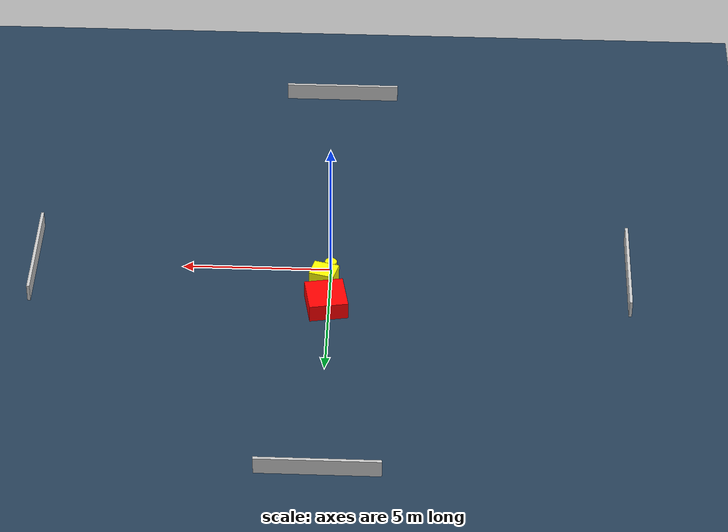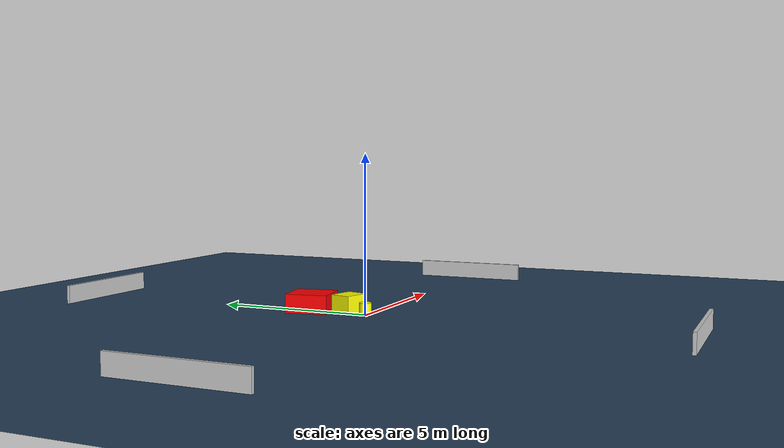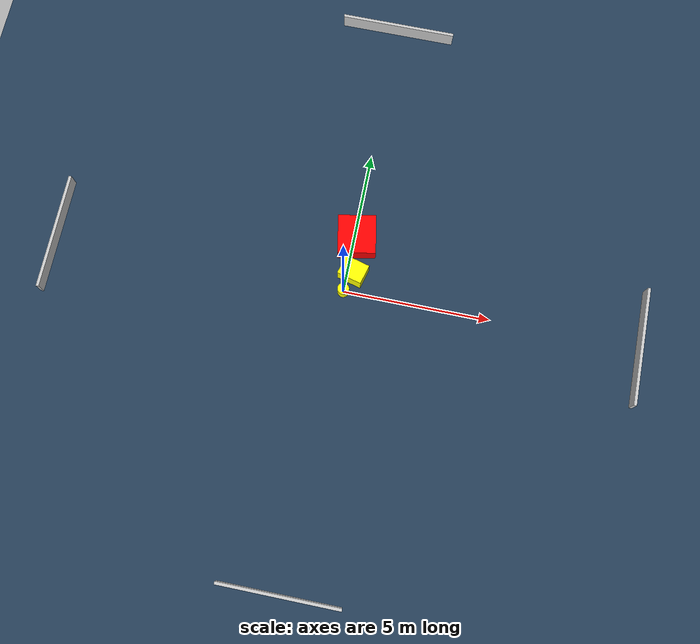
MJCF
<?xml version="1.0" ?>
<mujoco model="generated_environment">
  <option timestep="0.01" integrator="RK4" cone="elliptic"/>
  <default>
    <geom density="1"/>
  </default>
  <asset>
    <texture builtin="gradient" height="3072" name="skybox" rgb1="0.3 0.5 0.7" rgb2="0 0 0" type="skybox" width="512"/>
    <texture builtin="checker" height="300" name="groundplane" rgb1="0.2 0.3 0.4" rgb2="0.1 0.2 0.3" type="2d" width="300"/>
    <material name="groundplane" reflectance="0.2" texrepeat="5 5" texture="groundplane"/>
  </asset>
  <worldbody>
    <light dir="0 0 -1" directional="true" pos="0 0 1.5"/>
    <geom condim="3" friction="0.5 0.005 0.001" material="groundplane" name="floor" pos="0 0 0" size="0 0 0.05" type="plane"/>
    <body name="walls">
      <geom name="wall_1" condim="4" pos="-10.0 0.0 0.3" rgba="0.800000011920929 0.800000011920929 0.800000011920929 1.0" size="0.05 2.0 0.3" type="box"/>
      <geom name="wall_2" condim="4" pos="10.0 0.0 0.3" rgba="0.800000011920929 0.800000011920929 0.800000011920929 1.0" size="0.05 2.0 0.3" type="box"/>
      <geom name="wall_3" condim="4" pos="0.0 -10.0 0.3" rgba="0.800000011920929 0.800000011920929 0.800000011920929 1.0" size="2.0 0.05 0.3" type="box"/>
      <geom name="wall_4" condim="4" pos="0.0 10.0 0.3" rgba="0.800000011920929 0.800000011920929 0.800000011920929 1.0" size="2.0 0.05 0.3" type="box"/>
    </body>
    <body name="robot">
      <joint name="joint_x" type="slide" pos="0 0 0" axis="1 0 0"/>
      <joint name="joint_y" type="slide" pos="0 0 0" axis="0 1 0"/>
      <geom name="robot" type="cylinder" pos="0.0 0.0 0.2" size="0.2 0.2 0.0" mass="5.0" friction="1.0 0.005 0.0001" condim="4" rgba="1.0 1.0 0.0 1.0"/>
    </body>
    <body name="obstacle_1_movable">
      <geom name="obstacle_1_movable" condim="4" pos="0.2072632561975327 0.6714978649665996 0.3" euler="0 0 75.07176680913918" friction="0.0 0.005 0.001" rgba="1.0 1.0 0.0 1.0" size="0.34101842306118235 0.4287869225101406 0.3" type="box" mass="0.1"/>
      <joint type="free"/>
    </body>
    <body name="obstacle_2_static">
      <geom name="obstacle_2_static" condim="4" pos="0.08037647718399749 1.9180002989590517 0.3" euler="0 0 100.22304164213053" friction="0.0 0.005 0.001" rgba="1.0 0.0 0.0 1.0" size="0.6721519088679919 0.6466308555064038 0.3" type="box"/>
    </body>
  </worldbody>
  <actuator>
    <motor name="actuator_x" joint="joint_x" gear="1" ctrlrange="-1 1"/>
    <motor name="actuator_y" joint="joint_y" gear="1" ctrlrange="-1 1"/>
  </actuator>
</mujoco>
